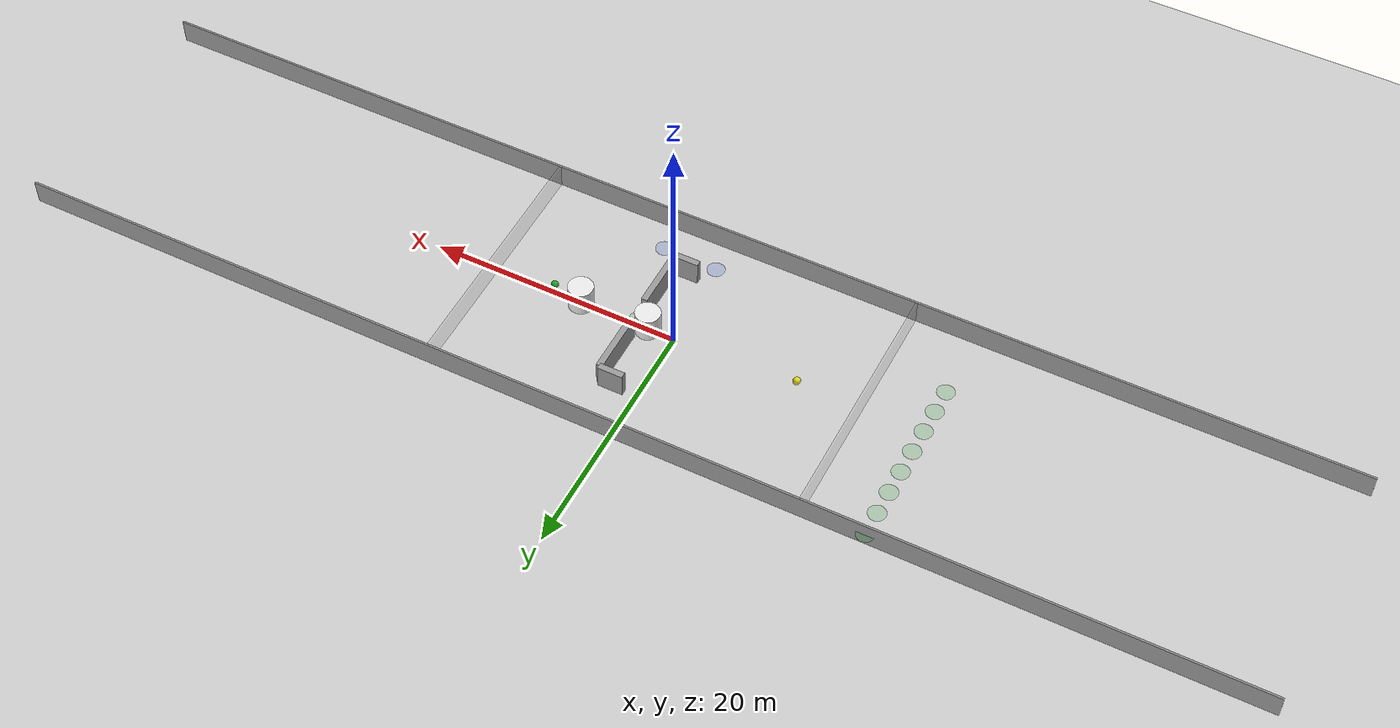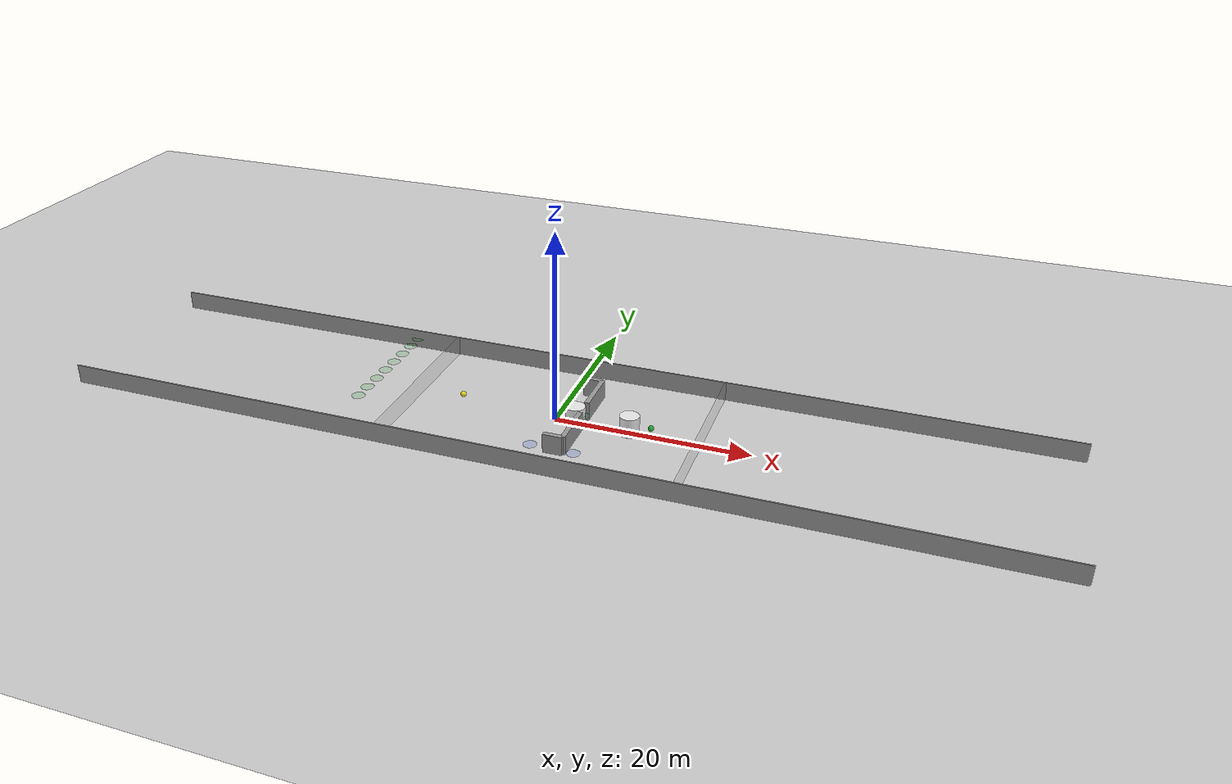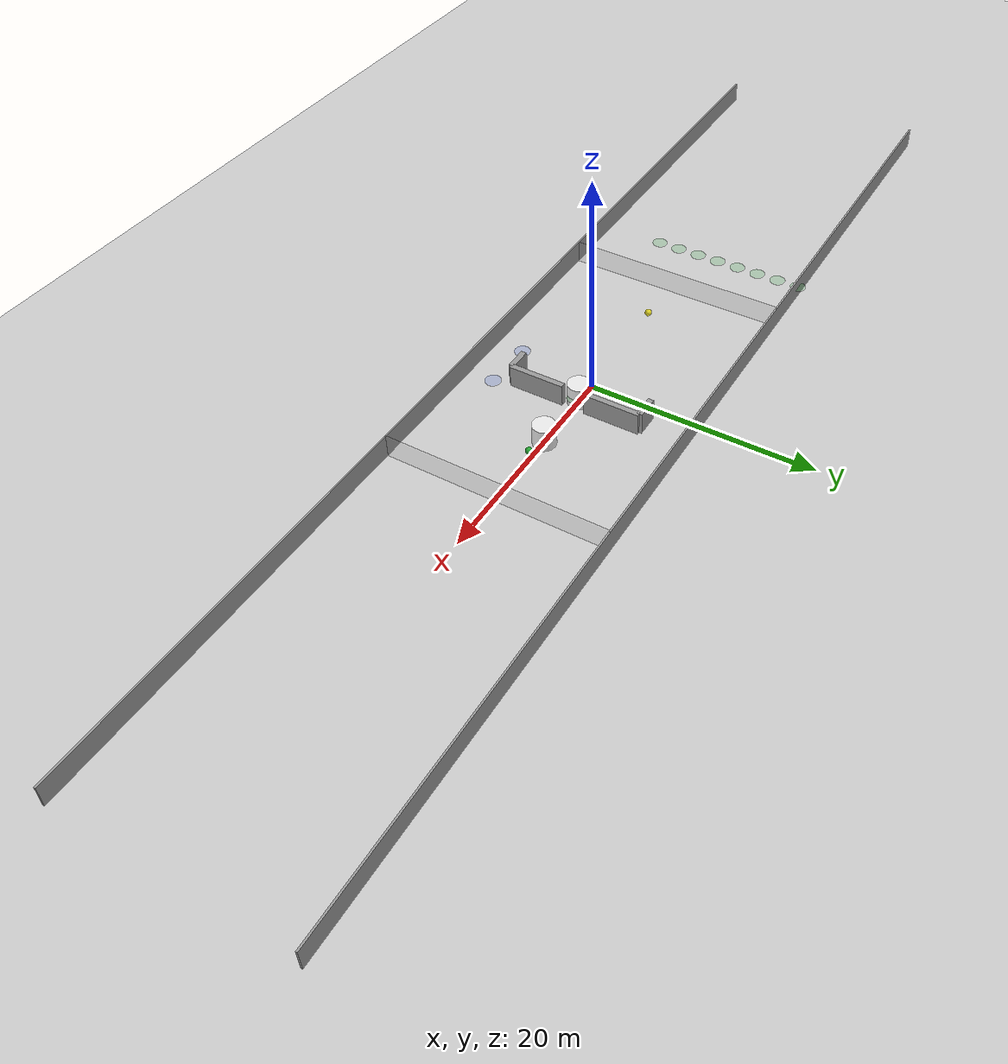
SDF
<?xml version="1.0" ?>
<sdf version="1.5">
  <world name="default">
   <light type="directional" name="sun">
      <cast_shadows>false</cast_shadows>
      <pose>0 0 100 0 0 0</pose>
      <diffuse>0.8 0.8 0.8 1</diffuse>
      <specular>0.9 0.9 0.9 1</specular>
      <attenuation>
        <range>1000</range>
        <constant>0.9</constant>
        <linear>0.01</linear>
        <quadratic>0.001</quadratic>
      </attenuation>
      <direction>0.2 0.2 -0.9</direction>
    </light>

    <!-- A ground plane -->
    <include>
      <uri>model://ground_plane</uri>
    </include>

    <!-- 初始视角 -->
    <gui fullscreen='0'>
      <camera name='user_camera'>
        <pose>-13.0 0.0 12.0 0 0.75 0.0</pose>
        <view_controller>orbit</view_controller>
      </camera>
    </gui>

    <!-- 地面 -->
    <physics type='ode'>
      <gravity>0 0 -9.8066</gravity>
      <ode>
        <solver>
          <type>quick</type>
          <iters>150</iters>
          <sor>1.3</sor>
          <use_dynamic_moi_rescaling>0</use_dynamic_moi_rescaling>
        </solver>
        <constraints>
          <cfm>0.00001</cfm>
          <erp>0.2</erp>
          <contact_max_correcting_vel>1000</contact_max_correcting_vel>
          <contact_surface_layer>0.01</contact_surface_layer>
        </constraints>
      </ode>
      <max_step_size>0.004</max_step_size>
      <real_time_factor>1000.0</real_time_factor>
      <real_time_update_rate>250</real_time_update_rate>
      <magnetic_field>6.0e-6 2.3e-5 -4.2e-5</magnetic_field>
    </physics>

    <model name='start_point'>
      <pose> -10 0 1 0 0 0 </pose>
      <include>
        <uri>model://start_sphere</uri>
      </include>
    </model>
    <model name='goal_point'>
      <pose> 10 0 1 0 0 0 </pose>
      <include>
        <uri>model://goal_sphere</uri>
      </include>
    </model>

    <model name='obs0'>
      <pose> 7.769422 0.034320 1 0 0 0 </pose>
      <include>
        <uri>model://goal_update/obs_cylinder</uri>
      </include>
    </model>
    <model name='obs1'>
      <pose> 2.178836 -0.030191 1 0 0 0 </pose>
      <include>
        <uri>model://goal_update/obs_cylinder</uri>
      </include>
    </model>

    <model name='waypoint-1'>
      <pose> 2.905153 0.027130 1 0 0 0 </pose>
      <include>
        <uri>model://waypoint</uri>
      </include>
    </model>
    <model name='waypoint0'>
      <pose> -20 -4 1 0 0 0 </pose>
      <include>
        <uri>model://waypoint</uri>
      </include>
    </model>
   <model name='waypoint1'>
      <pose> -0.023526 -6.831625 1 0 0 0 </pose>
      <include>
        <uri>model://waypoint_blue</uri>
      </include>
    </model>
    <model name='waypoint2'>
      <pose> 4.389105 -6.950821 1 0 0 0 </pose>
      <include>
        <uri>model://waypoint_blue</uri>
      </include>
    </model>
    <model name='waypoint3'>
      <pose> -20 -4 1 0 0 0 </pose>
      <include>
        <uri>model://waypoint</uri>
      </include>
    </model>
    <model name='waypoint4'>
      <pose> -20 -2 1 0 0 0 </pose>
      <include>
        <uri>model://waypoint</uri>
      </include>
    </model>
    <model name='waypoint5'>
      <pose> -20 0 1 0 0 0 </pose>
      <include>
        <uri>model://waypoint</uri>
      </include>
    </model>
    <model name='waypoint6'>
      <pose> -20 2 1 0 0 0 </pose>
      <include>
        <uri>model://waypoint</uri>
      </include>
    </model>
    <model name='waypoint7'>
      <pose> -20 4 1 0 0 0 </pose>
      <include>
        <uri>model://waypoint</uri>
      </include>
    </model>
    <model name='waypoint8'>
      <pose> -20 6 1 0 0 0 </pose>
      <include>
        <uri>model://waypoint</uri>
      </include>
    </model>
    <model name='waypoint9'>
      <pose> -20 8 1 0 0 0 </pose>
      <include>
        <uri>model://waypoint</uri>
      </include>
    </model>
    <model name='waypoint10'>
      <pose> -20 10 1 0 0 0 </pose>
      <include>
        <uri>model://waypoint</uri>
      </include>
    </model>

    <model name='wall1'>
      <pose> 0 -10 1 0 0 0 </pose>
      <include>
        <uri>model://obs_wall</uri>
      </include>
    </model>
    <model name='wall2'>
      <pose> 0 10 1 0 0 0 </pose>
      <include>
        <uri>model://obs_wall</uri>
      </include>
    </model>
    <model name='wall3'>
      <pose> -15 0 1 0 0 0 </pose>
      <include>
        <uri>model://obs_wall_x</uri>
      </include>
    </model>
    <model name='wall4'>
      <pose> 15 0 1 0 0 0 </pose>
      <include>
        <uri>model://obs_wall_x</uri>
      </include>
    </model>
    <model name='wall5'>
      <pose> 3 3.5 1 0 0 0 </pose>
      <include>
        <uri>model://goal_update/obs_wall_h</uri>
      </include>
    </model>
    <model name='wall6'>
      <pose> 3 -3.5 1 0 0 0 </pose>
      <include>
        <uri>model://goal_update/obs_wall_h</uri>
      </include>
    </model>
    <model name='wall7'>
      <pose> 2 6 1 0 0 0 </pose>
      <include>
        <uri>model://goal_update/obs_wall_s</uri>
      </include>
    </model>
    <model name='wall8'>
      <pose> 2 -6 1 0 0 0 </pose>
      <include>
        <uri>model://goal_update/obs_wall_s</uri>
      </include>
    </model>

  </world>
</sdf>

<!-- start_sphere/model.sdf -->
<sdf version='1.6'>
  <model name='start_sphere'>
    <link name='link'>
      <inertial>
        <mass>0.1</mass>
        <pose frame=''>0 0 0 0 -0 0</pose>
      </inertial>
      <self_collide>0</self_collide>
      <enable_wind>0</enable_wind>
      <kinematic>0</kinematic>
      <pose frame=''>0 0 0 0 -0 0</pose>
      <gravity>0</gravity>
      <visual name='visual'>
        <geometry>
          <sphere>
            <radius>0.3</radius>
          </sphere>
        </geometry>
        <material>
          <script>
            <name>Gazebo/Yellow</name>
            <uri>file://media/materials/scripts/gazebo.material</uri>
          </script>
          <shader type='pixel'/>
        </material>
        <pose frame=''>0 0 0 0 -0 0</pose>
        <transparency>0</transparency>
        <cast_shadows>1</cast_shadows>
      </visual>
    </link>
    <static>0</static>
    <allow_auto_disable>1</allow_auto_disable>
  </model>
</sdf>

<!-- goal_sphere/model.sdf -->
<sdf version='1.6'>
  <model name='goal_sphere'>
    <link name='link'>
      <inertial>
        <mass>0.1</mass>
        <pose frame=''>0 0 0 0 -0 0</pose>
      </inertial>
      <self_collide>0</self_collide>
      <enable_wind>0</enable_wind>
      <kinematic>0</kinematic>
      <pose frame=''>0 0 0 0 -0 0</pose>
      <gravity>0</gravity>
      <visual name='visual'>
        <geometry>
          <sphere>
            <radius>0.3</radius>
          </sphere>
        </geometry>
        <material>
          <script>
            <name>Gazebo/Green</name>
            <uri>file://media/materials/scripts/gazebo.material</uri>
          </script>
          <shader type='pixel'/>
        </material>
        <pose frame=''>0 0 0 0 -0 0</pose>
        <transparency>0</transparency>
        <cast_shadows>1</cast_shadows>
      </visual>
    </link>
    <static>0</static>
    <allow_auto_disable>1</allow_auto_disable>
  </model>
</sdf>

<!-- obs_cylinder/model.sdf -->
<sdf version='1.6'>
  <model name='obs_cylinder'>
    <link name='link'>
      <inertial>
        <mass>100</mass>
        <pose frame=''>0 0 0 0 -0 0</pose>
      </inertial>
      <self_collide>0</self_collide>
      <enable_wind>0</enable_wind>
      <kinematic>0</kinematic>
      <pose frame=''>0 0 0 0 -0 0</pose>
      <gravity>1</gravity>
      <visual name='visual'>
        <geometry>
          <cylinder>
            <radius>1</radius>
            <length>2</length>
          </cylinder>
        </geometry>
        <material>
          <script>
            <name>Gazebo/White</name>
            <uri>file://media/materials/scripts/gazebo.material</uri>
          </script>
          <shader type='pixel'/>
        </material>
        <pose frame=''>0 0 0 0 -0 0</pose>
        <transparency>0</transparency>
        <cast_shadows>1</cast_shadows>
      </visual>
      <collision name='collision'>
        <laser_retro>0</laser_retro>
        <max_contacts>10</max_contacts>
        <pose frame=''>0 0 0 0 -0 0</pose>
        <geometry>
          <cylinder>
            <radius>1</radius>
            <length>2</length>
          </cylinder>
        </geometry>
      </collision>
    </link>
    <static>0</static>
    <allow_auto_disable>1</allow_auto_disable>
  </model>
</sdf>

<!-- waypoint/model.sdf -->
<sdf version='1.6'>
  <model name='waypoint'>
    <link name='link'>
      <inertial>
        <mass>0.1</mass>
        <pose frame=''>0 0 0 0 -0 0</pose>
      </inertial>
      <self_collide>0</self_collide>
      <enable_wind>0</enable_wind>
      <kinematic>0</kinematic>
      <pose frame=''>0 0 0 0 -0 0</pose>
      <gravity>0</gravity>
      <visual name='visual'>
        <geometry>
          <cylinder>
            <radius>0.7</radius>
            <length>0.01</length>
          </cylinder>
        </geometry>
        <material>
          <script>
            <name>Gazebo/Green</name>
            <uri>file://media/materials/scripts/gazebo.material</uri>
          </script>
          <shader type='pixel'/>
        </material>
        <pose frame=''>0 0 0 0 -0 0</pose>
        <transparency>0.8</transparency>
        <cast_shadows>1</cast_shadows>
      </visual>
    </link>
    <static>0</static>
    <allow_auto_disable>1</allow_auto_disable>
  </model>
</sdf>

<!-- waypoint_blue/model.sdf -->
<sdf version='1.6'>
  <model name='waypoint'>
    <link name='link'>
      <inertial>
        <mass>0.1</mass>
        <pose frame=''>0 0 0 0 -0 0</pose>
      </inertial>
      <self_collide>0</self_collide>
      <enable_wind>0</enable_wind>
      <kinematic>0</kinematic>
      <pose frame=''>0 0 0 0 -0 0</pose>
      <gravity>0</gravity>
      <visual name='visual'>
        <geometry>
          <cylinder>
            <radius>0.7</radius>
            <length>0.01</length>
          </cylinder>
        </geometry>
        <material>
          <script>
            <name>Gazebo/Blue</name>
            <uri>file://media/materials/scripts/gazebo.material</uri>
          </script>
          <shader type='pixel'/>
        </material>
        <pose frame=''>0 0 0 0 -0 0</pose>
        <transparency>0.8</transparency>
        <cast_shadows>1</cast_shadows>
      </visual>
    </link>
    <static>0</static>
    <allow_auto_disable>1</allow_auto_disable>
  </model>
</sdf>

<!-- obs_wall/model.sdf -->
<sdf version='1.6'>
  <model name="obs_wall">
    <pose frame=''>0 0 0 0 -0 0</pose>
    <static>true</static>
    <link name="wall_link">
        <inertial>
          <mass>100</mass>
        </inertial>
        <collision name="my_collision">
          <geometry>
            <box>
              <!-- 之前设置为30 0.15 2 -->
              <size>100 0.15 2</size>
            </box>
          </geometry>
        </collision>
        <visual name="my_visual">
          <geometry>
            <box>
              <!-- 之前设置为30 0.15 2 -->
              <size>100 0.15 2</size>
            </box>
          </geometry>
          <material>
            <script>
              <uri>file://media/materials/scripts/gazebo.material</uri>
              <name>Gazebo/Gray</name>
            </script>
            <ambient>1 1 1 1</ambient>
          </material>
        </visual>
    </link>
  </model>
</sdf>

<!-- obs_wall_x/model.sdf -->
<sdf version='1.6'>
  <model name="obs_wall_x">
    <pose frame=''>0 0 0 0 -0 0</pose>
    <static>true</static>
    <link name="wall_link">
        <inertial>
          <mass>100</mass>
        </inertial>
        <collision name="my_collision">
          <laser_retro>0</laser_retro>
          <max_contacts>10</max_contacts>
          <pose frame=''>0 0 0 0 -0 0</pose>
          <geometry>
            <box>
              <!-- 之前设置为0.15 20 2 -->
              <size>0.15 20 2</size>
            </box>
          </geometry>
        </collision>
        <visual name="my_visual">
          <geometry>
            <box>
              <!-- 之前设置为0.15 20 2 -->
              <size>0.15 20 2</size>
            </box>
          </geometry>
          <material>
            <script>
              <uri>file://media/materials/scripts/gazebo.material</uri>
              <name>Gazebo/Gray</name>
            </script>
            <ambient>1 1 1 1</ambient>
          </material>
          <transparency>0.8</transparency>
        </visual>
    </link>
  </model>
</sdf>

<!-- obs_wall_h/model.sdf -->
<sdf version='1.6'>
  <model name="obs_wall_env3_h">
    <pose frame=''>0 0 0 0 -0 0</pose>
    <static>true</static>
    <link name="wall_link">
        <inertial>
          <mass>100</mass>
        </inertial>
        <collision name="my_collision">
          <laser_retro>0</laser_retro>
          <max_contacts>10</max_contacts>
          <pose frame=''>0 0 0 0 -0 0</pose>
          <geometry>
            <box>
              <size>0.5 5 2</size>
            </box>
          </geometry>
        </collision>
        <visual name="my_visual">
          <geometry>
            <box>
              <size>0.5 5 2</size>
            </box>
          </geometry>
          <material>
            <script>
              <uri>file://media/materials/scripts/gazebo.material</uri>
              <name>Gazebo/Gray</name>
            </script>
            <ambient>1 1 1 1</ambient>
          </material>
          <transparency>0</transparency>
        </visual>
    </link>
  </model>
</sdf>

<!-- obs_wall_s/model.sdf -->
<sdf version='1.6'>
  <model name="obs_wall_env3_s">
    <pose frame=''>0 0 0 0 -0 0</pose>
    <static>true</static>
    <link name="wall_link">
        <inertial>
          <mass>100</mass>
        </inertial>
        <collision name="my_collision">
          <geometry>
            <box>
              <size>2 0.5 2</size>
            </box>
          </geometry>
        </collision>
        <visual name="my_visual">
          <geometry>
            <box>
              <size>2 0.5 2</size>
            </box>
          </geometry>
          <material>
            <script>
              <uri>file://media/materials/scripts/gazebo.material</uri>
              <name>Gazebo/Gray</name>
            </script>
            <ambient>1 1 1 1</ambient>
          </material>
        </visual>
    </link>
  </model>
</sdf>
